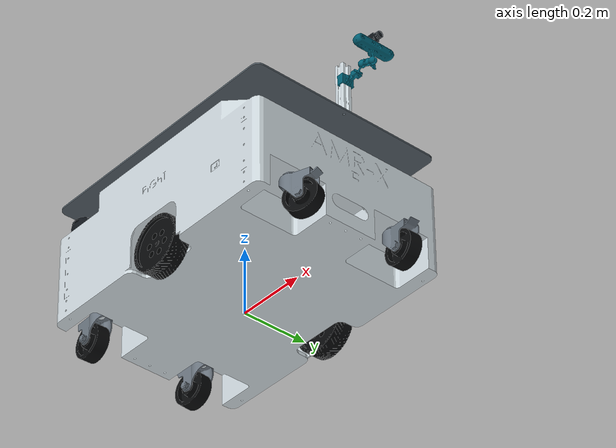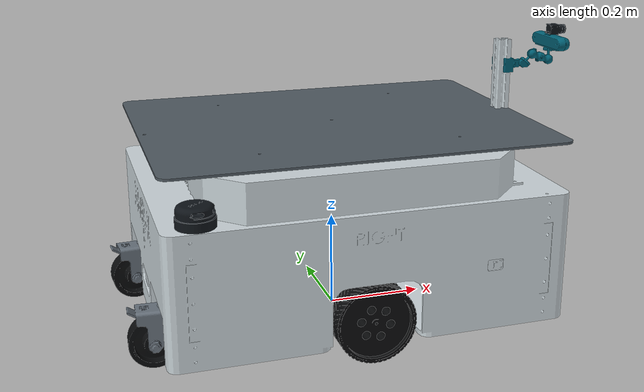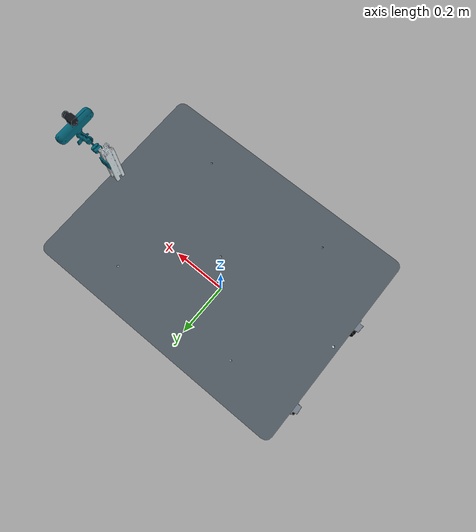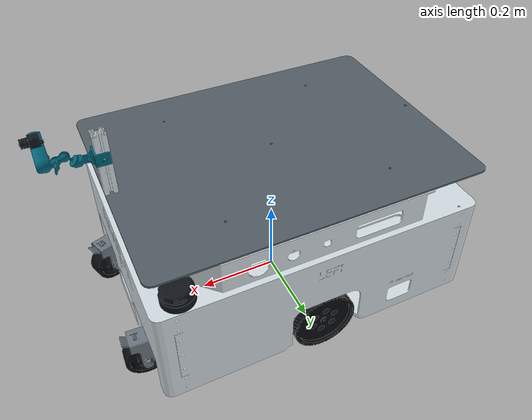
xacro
<?xml version="1.0"?>
<robot name="amr_x_2lidar" xmlns:xacro="http://www.ros.org/wiki/xacro">

  <xacro:property name="wheel_radius"     value="0.080"/>   <!-- VERIFY: not derivable from the CAD export -->
  <xacro:property name="wheel_separation" value="0.541"/>  <!-- from DL/DR joint origins (2 x 0.289353) -->
  <xacro:property name="base_to_axle_z"   value="0.3305"/>  <!-- NEW CAD: DL/DR joint z = -0.3305 (was 0.3505) -->

  <!-- IMU mount point on base_link -->
  <xacro:property name="imu_xyz" value="0 0 0.0"/>

  <xacro:property name="lidar1_topic" value="scan"/>
  <xacro:property name="lidar2_topic" value="scan_2"/>

  <!-- LiDAR sensor characteristics (shared by both units) -->
  <xacro:property name="lidar_min_range"    value="0.15"/>
  <xacro:property name="lidar_max_range"    value="12.0"/>
  <xacro:property name="lidar_samples"      value="360"/>
  <xacro:property name="lidar_update_rate"  value="10"/>

  <xacro:property name="camera_xyz"          value="0.0 -0.05 0.02"/>
  <xacro:property name="camera_rpy"          value="0 0 0"/>
  <xacro:property name="camera_topic"        value="camera/image_raw"/>
  <xacro:property name="camera_width"        value="640"/>
  <xacro:property name="camera_height"       value="480"/>
  <xacro:property name="camera_update_rate"  value="30"/>
  <xacro:property name="camera_horizontal_fov" value="1.089"/> <!-- ~62 deg -->

  <xacro:include filename="$(find robot_description)/urdf/AMR-2Lidar-Link.urdf"/>

  <link name="base_footprint"/>
  <joint name="base_footprint_joint" type="fixed">
    <parent link="base_footprint"/>
    <child  link="base_link"/>
    <origin xyz="0 0 ${base_to_axle_z + wheel_radius}" rpy="0 0 0"/>
  </joint>

  <link name="imu_link"/>
  <joint name="imu_joint" type="fixed">
    <parent link="base_link"/>
    <child  link="imu_link"/>
    <origin xyz="${imu_xyz}" rpy="0 0 0"/>
  </joint>

  <link name="camera_link">
    <inertial>
      <mass value="0.05"/>
      <origin xyz="0 0 0" rpy="0 0 0"/>
      <inertia ixx="1e-6" iyy="1e-6" izz="1e-6" ixy="0" ixz="0" iyz="0"/>
    </inertial>
  </link>
  <joint name="camera_joint" type="fixed">
    <parent link="cameras_mount_Link"/>
    <child  link="camera_link"/>
    <origin xyz="${camera_xyz}" rpy="${camera_rpy}"/>
  </joint>

  <link name="camera_optical_link">
    <inertial>
      <mass value="0.001"/>
      <origin xyz="0 0 0" rpy="0 0 0"/>
      <inertia ixx="1e-7" iyy="1e-7" izz="1e-7" ixy="0" ixz="0" iyz="0"/>
    </inertial>
  </link>
  <joint name="camera_optical_joint" type="fixed">
    <parent link="camera_link"/>
    <child  link="camera_optical_link"/>
    <origin xyz="0 0 0" rpy="-1.5708 0 -1.5708"/>
  </joint>

  <!-- ===================================================================
       4. Gazebo Harmonic system plugins
       =================================================================== -->
  <gazebo>
    <!-- Differential drive on the REAL wheels -->
    <plugin filename="gz-sim-diff-drive-system"
            name="gz::sim::systems::DiffDrive">
      <left_joint>DL_joint</left_joint>
      <right_joint>DR_joint</right_joint>
      <wheel_separation>${wheel_separation}</wheel_separation>
      <wheel_radius>${wheel_radius}</wheel_radius>
      <topic>cmd_vel</topic>
      <odom_topic>odom</odom_topic>
      <tf_topic>tf</tf_topic>
      <frame_id>odom</frame_id>
      <child_frame_id>base_footprint</child_frame_id>
      <odom_publish_frequency>50</odom_publish_frequency>
      <max_linear_velocity>1.2</max_linear_velocity>
      <min_linear_velocity>-1.2</min_linear_velocity>
      <max_angular_velocity>1.5</max_angular_velocity>
      <min_angular_velocity>-1.5</min_angular_velocity>
    </plugin>

    <plugin filename="gz-sim-joint-state-publisher-system"
            name="gz::sim::systems::JointStatePublisher">
      <topic>joint_states</topic>
    </plugin>

    <plugin filename="gz-sim-sensors-system"
            name="gz::sim::systems::Sensors">
      <render_engine>ogre2</render_engine>
    </plugin>
  </gazebo>

  <gazebo reference="Lidar1_link">
    <sensor name="lidar1" type="gpu_lidar">
      <topic>${lidar1_topic}</topic>
      <gz_frame_id>Lidar1_link</gz_frame_id>
      <update_rate>${lidar_update_rate}</update_rate>
      <always_on>true</always_on>
      <visualize>true</visualize>
      <lidar>
        <scan>
          <horizontal>
            <samples>${lidar_samples}</samples>
            <resolution>1</resolution>
            <min_angle>-3.14159</min_angle>
            <max_angle>3.14159</max_angle>
          </horizontal>
          <vertical>
            <samples>1</samples>
            <resolution>1</resolution>
            <min_angle>0</min_angle>
            <max_angle>0</max_angle>
          </vertical>
        </scan>
        <range>
          <min>${lidar_min_range}</min>
          <max>${lidar_max_range}</max>
          <resolution>0.01</resolution>
        </range>
      </lidar>
    </sensor>
  </gazebo>

  <gazebo reference="Lidar2_link">
    <sensor name="lidar2" type="gpu_lidar">
      <topic>${lidar2_topic}</topic>
      <gz_frame_id>Lidar2_link</gz_frame_id>
      <update_rate>${lidar_update_rate}</update_rate>
      <always_on>true</always_on>
      <visualize>true</visualize>
      <lidar>
        <scan>
          <horizontal>
            <samples>${lidar_samples}</samples>
            <resolution>1</resolution>
            <min_angle>-3.14159</min_angle>
            <max_angle>3.14159</max_angle>
          </horizontal>
          <vertical>
            <samples>1</samples>
            <resolution>1</resolution>
            <min_angle>0</min_angle>
            <max_angle>0</max_angle>
          </vertical>
        </scan>
        <range>
          <min>${lidar_min_range}</min>
          <max>${lidar_max_range}</max>
          <resolution>0.01</resolution>
        </range>
      </lidar>
    </sensor>
  </gazebo>

  <!-- ===================================================================
       6. IMU sensor
       =================================================================== -->
  <gazebo reference="imu_link">
    <sensor name="imu" type="imu">
      <topic>imu</topic>
      <gz_frame_id>imu_link</gz_frame_id>
      <update_rate>100</update_rate>
      <always_on>true</always_on>
    </sensor>
  </gazebo>

  <gazebo reference="camera_link">
    <sensor name="camera" type="camera">
      <topic>${camera_topic}</topic>
      <gz_frame_id>camera_optical_link</gz_frame_id>
      <update_rate>${camera_update_rate}</update_rate>
      <always_on>true</always_on>
      <visualize>true</visualize>
      <camera>
        <horizontal_fov>${camera_horizontal_fov}</horizontal_fov>
        <image>
          <width>${camera_width}</width>
          <height>${camera_height}</height>
          <format>R8G8B8</format>
        </image>
        <clip>
          <near>0.05</near>
          <far>30.0</far>
        </clip>
      </camera>
    </sensor>
  </gazebo>

  <gazebo reference="FR_Caster_Wheel_Link"><mu1>0.0</mu1><mu2>0.0</mu2></gazebo>
  <gazebo reference="FL_Caster_Wheel_Link"><mu1>0.0</mu1><mu2>0.0</mu2></gazebo>
  <gazebo reference="BR_Caster_Wheel_Link"><mu1>0.0</mu1><mu2>0.0</mu2></gazebo>
  <gazebo reference="BL_Caster_Wheel_Link"><mu1>0.0</mu1><mu2>0.0</mu2></gazebo>

  <!-- ==== INSPECTION MODULE (thermal camera + gas sensor) ==== -->
  <link name="cameras_mount_Link">
    <inertial>
      <origin xyz="-0.040236 0.013428 -0.026709" rpy="0 0 0"/>
      <mass value="0.14071"/>
      <inertia ixx="5.798E-05" ixy="3.3384E-07" ixz="-1.7319E-07"
               iyy="1.6986E-05" iyz="1.6883E-08" izz="5.5627E-05"/>
    </inertial>
    <visual>
      <origin xyz="0 0 0" rpy="0 0 0"/>
      <geometry><mesh filename="package://robot_description/meshes/cameras_mount_Link.STL"/></geometry>
      <material name="amrx_medical_teal"><color rgba="0 0.38 0.46 1"/></material>
    </visual>
    <collision>
      <origin xyz="0 0 0" rpy="0 0 0"/>
      <geometry><mesh filename="package://robot_description/meshes/cameras_mount_Link.STL"/></geometry>
    </collision>
  </link>
  <joint name="cameras_mount_joint" type="fixed">
    <origin xyz="0.51252 -0.0115 0.13975" rpy="0 0.020136 0"/>
    <parent link="base_link"/>
    <child link="cameras_mount_Link"/>
  </joint>

  <link name="camera_thermal_Link">
    <inertial>
      <origin xyz="-0.025189 4.4462E-06 -7.318E-05" rpy="0 0 0"/>
      <mass value="0.008096"/>
      <inertia ixx="6.1294E-07" ixy="7.4569E-11" ixz="-1.4303E-09"
               iyy="4.3511E-07" iyz="-4.9824E-11" izz="4.3599E-07"/>
    </inertial>
    <visual>
      <origin xyz="0 0 0" rpy="0 0 0"/>
      <geometry><mesh filename="package://robot_description/meshes/camera_thermal_Link.STL"/></geometry>
      <material name="amrx_sensor_graphite"><color rgba="0.06 0.08 0.10 1"/></material>
    </visual>
    <collision>
      <origin xyz="0 0 0" rpy="0 0 0"/>
      <geometry><mesh filename="package://robot_description/meshes/camera_thermal_Link.STL"/></geometry>
    </collision>
  </link>
  <joint name="camera_thermal_joint" type="fixed">
    <origin xyz="0.018405 0.0095726 0.02568" rpy="0 0 0"/>
    <parent link="cameras_mount_Link"/>
    <child link="camera_thermal_Link"/>
  </joint>

  <link name="GAZ_sensor_Link">
    <inertial>
      <origin xyz="0 0 0" rpy="0 0 0"/>
      <mass value="0.001"/>
      <inertia ixx="1e-6" ixy="0" ixz="0" iyy="1e-6" iyz="0" izz="1e-6"/>
    </inertial>
    <visual>
      <origin xyz="0 0 0" rpy="0 0 0"/>
      <geometry><mesh filename="package://robot_description/meshes/GAZ_sensor_Link.STL"/></geometry>
      <material name="amrx_porcelain_white"><color rgba="0.82 0.86 0.88 1"/></material>
    </visual>
    <collision>
      <origin xyz="0 0 0" rpy="0 0 0"/>
      <geometry><mesh filename="package://robot_description/meshes/GAZ_sensor_Link.STL"/></geometry>
    </collision>
  </link>
  <joint name="GAZ_sensor_Joint" type="fixed">
    <origin xyz="0.23945 -0.30074 -0.235" rpy="0 0 0"/>
    <parent link="base_link"/>
    <child link="GAZ_sensor_Link"/>
  </joint>

</robot>

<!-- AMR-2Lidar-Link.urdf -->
<robot
  name="AMR-2Lidar-Link">
  <!-- AMR-X visual finish palette:
       porcelain body panels, brushed-metal deck and caster forks,
       rubber-black wheels, and graphite sensor housings. -->
  <link
    name="base_link">
    <inertial>
      <origin
        xyz="0.00137619141427497 -0.000593406526369778 -0.212968361709277"
        rpy="0 0 0" />
      <mass
        value="22.1090437469277" />
      <inertia
        ixx="0.541221819095536"
        ixy="-0.00027729020661416"
        ixz="0.0002447950863611"
        iyy="0.973191945840648"
        iyz="-0.000168021251934657"
        izz="1.44385592854034" />
    </inertial>
    <visual name="body_finish">
      <origin
        xyz="0 0 0"
        rpy="0 0 0" />
      <geometry>
        <mesh
          filename="package://robot_description/meshes/base_body_visual.STL" />
      </geometry>
      <material
        name="amrx_porcelain_white">
        <color
          rgba="0.82 0.86 0.88 1" />
      </material>
    </visual>
    <visual name="deck_finish">
      <origin xyz="0 0 0" rpy="0 0 0" />
      <geometry>
        <mesh filename="package://robot_description/meshes/base_deck_visual.STL" />
      </geometry>
      <material name="amrx_brushed_silver">
        <color rgba="0.32 0.36 0.39 1" />
      </material>
    </visual>
    <collision>
      <origin
        xyz="0 0 0"
        rpy="0 0 0" />
      <geometry>
        <mesh
          filename="package://robot_description/meshes/base_link.STL" />
      </geometry>
    </collision>
  </link>
  <link
    name="FR_Body_Caster_Link">
    <inertial>
      <origin
        xyz="0.0205025619096376 0.00805999842043462 -0.0351455880816226"
        rpy="0 0 0" />
      <mass
        value="0.0712645570553844" />
      <inertia
        ixx="4.45319289719978E-05"
        ixy="-5.81773865014641E-07"
        ixz="2.69456770292489E-06"
        iyy="4.59939202869369E-05"
        iyz="9.41238272155232E-07"
        izz="5.35142156051028E-05" />
    </inertial>
    <visual>
      <origin
        xyz="0 0 0"
        rpy="0 0 0" />
      <geometry>
        <mesh
          filename="package://robot_description/meshes/FR_Body_Caster_Link.STL" />
      </geometry>
      <material
        name="amrx_brushed_aluminum">
        <color
          rgba="0.42 0.46 0.50 1" />
      </material>
    </visual>
    <collision>
      <origin
        xyz="0 0 0"
        rpy="0 0 0" />
      <geometry>
        <mesh
          filename="package://robot_description/meshes/FR_Body_Caster_Link.STL" />
      </geometry>
    </collision>
  </link>
  <joint
    name="FR_Body_Caster_joint"
    type="continuous">
    <origin
      xyz="0.374 -0.169999999999993 -0.282499999999998"
      rpy="0 0 0" />
    <parent
      link="base_link" />
    <child
      link="FR_Body_Caster_Link" />
    <axis
      xyz="0 0 -1" />
  </joint>
  <link
    name="FR_Caster_Wheel_Link">
    <inertial>
      <origin
        xyz="-3.33066907387547E-16 0.0222865339908844 -1.04083408558608E-16"
        rpy="0 0 0" />
      <mass
        value="0.177618721015329" />
      <inertia
        ixx="0.000148679235470586"
        ixy="4.74338450462408E-20"
        ixz="-3.58519663705533E-21"
        iyy="0.000257680237598666"
        iyz="-4.79457457726133E-20"
        izz="0.000148679235470586" />
    </inertial>
    <visual>
      <origin
        xyz="0 0 0"
        rpy="0 0 0" />
      <geometry>
        <mesh
          filename="package://robot_description/meshes/FR_Caster_Wheel_Link.STL" />
      </geometry>
      <material
        name="amrx_rubber_black">
        <color
          rgba="0.035 0.04 0.045 1" />
      </material>
    </visual>
    <collision>
      <origin
        xyz="0 0 0"
        rpy="0 0 0" />
      <geometry>
        <mesh
          filename="package://robot_description/meshes/FR_Caster_Wheel_Link.STL" />
      </geometry>
    </collision>
  </link>
  <joint
    name="FR_Caster_Wheel_joint"
    type="continuous">
    <origin
      xyz="0.0386920896195706 -0.00978837069543212 -0.078"
      rpy="0 0 0.336050555012841" />
    <parent
      link="FR_Body_Caster_Link" />
    <child
      link="FR_Caster_Wheel_Link" />
    <axis
      xyz="0 1 0" />
  </joint>
  <link
    name="FL_Body_Caster_Link">
    <inertial>
      <origin
        xyz="0.022028733333041 -0.000223339093545327 -0.0351454984672232"
        rpy="0 0 0" />
      <mass
        value="0.0712645578720288" />
      <inertia
        ixx="4.43330543774277E-05"
        ixy="9.06699137804065E-08"
        ixz="2.85079275825134E-06"
        iyy="4.61926668209074E-05"
        iyz="-1.38798124870845E-07"
        izz="5.3514227745675E-05" />
    </inertial>
    <visual>
      <origin
        xyz="0 0 0"
        rpy="0 0 0" />
      <geometry>
        <mesh
          filename="package://robot_description/meshes/FL_Body_Caster_Link.STL" />
      </geometry>
      <material
        name="amrx_brushed_aluminum">
        <color
          rgba="0.42 0.46 0.50 1" />
      </material>
    </visual>
    <collision>
      <origin
        xyz="0 0 0"
        rpy="0 0 0" />
      <geometry>
        <mesh
          filename="package://robot_description/meshes/FL_Body_Caster_Link.STL" />
      </geometry>
    </collision>
  </link>
  <joint
    name="FL_Body_Caster_joint"
    type="continuous">
    <origin
      xyz="0.374 0.170000000000006 -0.282499999999998"
      rpy="0 0 0" />
    <parent
      link="base_link" />
    <child
      link="FL_Body_Caster_Link" />
    <axis
      xyz="0 0 -1" />
  </joint>
  <link
    name="FL_Caster_Wheel_Link">
    <inertial>
      <origin
        xyz="-2.22044604925031E-16 -0.0217134660091165 -1.73472347597681E-17"
        rpy="0 0 0" />
      <mass
        value="0.177618721015329" />
      <inertia
        ixx="0.000148679235470585"
        ixy="1.99052742604761E-20"
        ixz="-6.0340766739589E-21"
        iyy="0.000257680237598665"
        iyz="-1.78933177108343E-21"
        izz="0.000148679235470585" />
    </inertial>
    <visual>
      <origin
        xyz="0 0 0"
        rpy="0 0 0" />
      <geometry>
        <mesh
          filename="package://robot_description/meshes/FL_Caster_Wheel_Link.STL" />
      </geometry>
      <material
        name="amrx_rubber_black">
        <color
          rgba="0.035 0.04 0.045 1" />
      </material>
    </visual>
    <collision>
      <origin
        xyz="0 0 0"
        rpy="0 0 0" />
      <geometry>
        <mesh
          filename="package://robot_description/meshes/FL_Caster_Wheel_Link.STL" />
      </geometry>
    </collision>
  </link>
  <joint
    name="FL_Caster_Wheel_joint"
    type="continuous">
    <origin
      xyz="0.0343304904762524 0.0203545430717568 -0.0780000000000001"
      rpy="0 0 -0.0486506116887168" />
    <parent
      link="FL_Body_Caster_Link" />
    <child
      link="FL_Caster_Wheel_Link" />
    <axis
      xyz="0 -1 0" />
  </joint>
  <link
    name="BR_Body_Caster_Link">
    <inertial>
      <origin
        xyz="-0.0220288643050933 0.000210006907644611 -0.0351454982768476"
        rpy="0 0 0" />
      <mass
        value="0.071264557847176" />
      <inertia
        ixx="4.43329452168321E-05"
        ixy="8.95443561334674E-08"
        ixz="-2.85087607349676E-06"
        iyy="4.61927755459435E-05"
        iyz="1.37072608516211E-07"
        izz="5.35142277781452E-05" />
    </inertial>
    <visual>
      <origin
        xyz="0 0 0"
        rpy="0 0 0" />
      <geometry>
        <mesh
          filename="package://robot_description/meshes/BR_Body_Caster_Link.STL" />
      </geometry>
      <material
        name="amrx_brushed_aluminum">
        <color
          rgba="0.42 0.46 0.50 1" />
      </material>
    </visual>
    <collision>
      <origin
        xyz="0 0 0"
        rpy="0 0 0" />
      <geometry>
        <mesh
          filename="package://robot_description/meshes/BR_Body_Caster_Link.STL" />
      </geometry>
    </collision>
  </link>
  <joint
    name="BR_Body_Caster_joint"
    type="continuous">
    <origin
      xyz="-0.373999999999999 -0.169999999999993 -0.282499999999998"
      rpy="0 0 0" />
    <parent
      link="base_link" />
    <child
      link="BR_Body_Caster_Link" />
    <axis
      xyz="0 0 -1" />
  </joint>
  <link
    name="BR_Caster_Wheel_Link">
    <inertial>
      <origin
        xyz="1.89084858881472E-16 0.0217134660091165 -2.25514051876985E-17"
        rpy="0 0 0" />
      <mass
        value="0.177618721015328" />
      <inertia
        ixx="0.000148679235470585"
        ixy="-6.60685698858354E-20"
        ixz="2.96982884968449E-20"
        iyy="0.000257680237598665"
        iyz="3.42889021891861E-20"
        izz="0.000148679235470585" />
    </inertial>
    <visual>
      <origin
        xyz="0 0 0"
        rpy="0 0 0" />
      <geometry>
        <mesh
          filename="package://robot_description/meshes/BR_Caster_Wheel_Link.STL" />
      </geometry>
      <material
        name="amrx_rubber_black">
        <color
          rgba="0.035 0.04 0.045 1" />
      </material>
    </visual>
    <collision>
      <origin
        xyz="0 0 0"
        rpy="0 0 0" />
      <geometry>
        <mesh
          filename="package://robot_description/meshes/BR_Caster_Wheel_Link.STL" />
      </geometry>
    </collision>
  </link>
  <joint
    name="BR_Caster_Wheel_joint"
    type="continuous">
    <origin
      xyz="-0.0343181653536056 -0.0203753166052122 -0.0780000000000002"
      rpy="0 0 -0.0480453985910889" />
    <parent
      link="BR_Body_Caster_Link" />
    <child
      link="BR_Caster_Wheel_Link" />
    <axis
      xyz="0 1 0" />
  </joint>
  <link
    name="BL_Body_Caster_Link">
    <inertial>
      <origin
        xyz="-0.0218678430005275 -0.00266697882029623 -0.0351455045702214"
        rpy="0 0 0" />
      <mass
        value="0.0712645529054218" />
      <inertia
        ixx="4.43414537888446E-05"
        ixy="-1.54182596802165E-07"
        ixz="-2.8443723651872E-06"
        iyy="4.61842448469417E-05"
        iyz="-2.36228974681823E-07"
        izz="5.3514226990257E-05" />
    </inertial>
    <visual>
      <origin
        xyz="0 0 0"
        rpy="0 0 0" />
      <geometry>
        <mesh
          filename="package://robot_description/meshes/BL_Body_Caster_Link.STL" />
      </geometry>
      <material
        name="amrx_brushed_aluminum">
        <color
          rgba="0.42 0.46 0.50 1" />
      </material>
    </visual>
    <collision>
      <origin
        xyz="0 0 0"
        rpy="0 0 0" />
      <geometry>
        <mesh
          filename="package://robot_description/meshes/BL_Body_Caster_Link.STL" />
      </geometry>
    </collision>
  </link>
  <joint
    name="BL_Body_Caster_joint"
    type="continuous">
    <origin
      xyz="-0.373999999999999 0.170000000000006 -0.282499999999998"
      rpy="0 0 0" />
    <parent
      link="base_link" />
    <child
      link="BL_Body_Caster_Link" />
    <axis
      xyz="0 0 -1" />
  </joint>
  <link
    name="BL_Caster_Wheel_Link">
    <inertial>
      <origin
        xyz="3.77302356024956E-16 -0.0222865339908825 7.80625564189563E-17"
        rpy="0 0 0" />
      <mass
        value="0.177618721015329" />
      <inertia
        ixx="0.000148679235470586"
        ixy="-4.15046144154607E-20"
        ixz="1.76376685974184E-20"
        iyy="0.000257680237598666"
        iyz="6.12826109423716E-21"
        izz="0.000148679235470585" />
    </inertial>
    <visual>
      <origin
        xyz="0 0 0"
        rpy="0 0 0" />
      <geometry>
        <mesh
          filename="package://robot_description/meshes/BL_Caster_Wheel_Link.STL" />
      </geometry>
      <material
        name="amrx_rubber_black">
        <color
          rgba="0.035 0.04 0.045 1" />
      </material>
    </visual>
    <collision>
      <origin
        xyz="0 0 0"
        rpy="0 0 0" />
      <geometry>
        <mesh
          filename="package://robot_description/meshes/BL_Caster_Wheel_Link.STL" />
      </geometry>
    </collision>
  </link>
  <joint
    name="BL_Caster_Wheel_joint"
    type="continuous">
    <origin
      xyz="-0.0350063315403583 0.0191689006488776 -0.0780000000000001"
      rpy="0 0 0.0828467818465256" />
    <parent
      link="BL_Body_Caster_Link" />
    <child
      link="BL_Caster_Wheel_Link" />
    <axis
      xyz="0 -1 0" />
  </joint>
  <link
    name="DR_Link">
    <inertial>
      <origin
        xyz="-1.58519700310666E-07 0.0188945749350604 -1.83852059257306E-07"
        rpy="0 0 0" />
      <mass
        value="0.694359970313603" />
      <inertia
        ixx="0.00133736761007223"
        ixy="4.06292710783297E-09"
        ixz="7.66114678507709E-10"
        iyy="0.00249169026727874"
        iyz="4.70958429396628E-09"
        izz="0.00133736783768793" />
    </inertial>
    <visual>
      <origin
        xyz="0 0 0"
        rpy="0 0 0" />
      <geometry>
        <mesh
          filename="package://robot_description/meshes/DR_Link.STL" />
      </geometry>
      <material
        name="amrx_rubber_black">
        <color
          rgba="0.035 0.04 0.045 1" />
      </material>
    </visual>
    <collision>
      <origin
        xyz="0 0 0"
        rpy="0 0 0" />
      <geometry>
        <mesh
          filename="package://robot_description/meshes/DR_Link.STL" />
      </geometry>
    </collision>
  </link>
  <joint
    name="DR_joint"
    type="continuous">
    <origin
      xyz="0 -0.289353419879756 -0.3305"
      rpy="0 0 0" />
    <parent
      link="base_link" />
    <child
      link="DR_Link" />
    <axis
      xyz="0 1 0" />
  </joint>
  <link
    name="DL_Link">
    <inertial>
      <origin
        xyz="-2.26846661843805E-07 -0.0188945749350604 8.64330206226671E-08"
        rpy="0 0 0" />
      <mass
        value="0.694359970313607" />
      <inertia
        ixx="0.00133736830215005"
        ixy="-5.81293010220078E-09"
        ixz="-5.152550629065E-10"
        iyy="0.00249169026727875"
        iyz="2.21300802855064E-09"
        izz="0.00133736714561013" />
    </inertial>
    <visual>
      <origin
        xyz="0 0 0"
        rpy="0 0 0" />
      <geometry>
        <mesh
          filename="package://robot_description/meshes/DL_Link.STL" />
      </geometry>
      <material
        name="amrx_rubber_black">
        <color
          rgba="0.035 0.04 0.045 1" />
      </material>
    </visual>
    <collision>
      <origin
        xyz="0 0 0"
        rpy="0 0 0" />
      <geometry>
        <mesh
          filename="package://robot_description/meshes/DL_Link.STL" />
      </geometry>
    </collision>
  </link>
  <joint
    name="DL_joint"
    type="continuous">
    <origin
      xyz="0 0.289353419879769 -0.3305"
      rpy="0 0 0" />
    <parent
      link="base_link" />
    <child
      link="DL_Link" />
    <axis
      xyz="0 1 0" />
  </joint>
  <link
    name="Lidar2_link">
    <inertial>
      <origin
        xyz="-0.000543004548526974 0.000841347150216609 -0.0222148342427571"
        rpy="0 0 0" />
      <mass
        value="0.163065240034906" />
      <inertia
        ixx="6.05699412893629E-05"
        ixy="-1.81258488113246E-07"
        ixz="-1.5594629675117E-07"
        iyy="6.0593687932255E-05"
        iyz="1.84120634628883E-07"
        izz="0.000107588752528074" />
    </inertial>
    <visual>
      <origin
        xyz="0 0 0"
        rpy="0 0 0" />
      <geometry>
        <mesh
          filename="package://robot_description/meshes/Lidar2_link.STL" />
      </geometry>
      <material
        name="amrx_sensor_graphite">
        <color
          rgba="0.06 0.08 0.10 1" />
      </material>
    </visual>
    <collision>
      <origin
        xyz="0 0 0"
        rpy="0 0 0" />
      <geometry>
        <mesh
          filename="package://robot_description/meshes/Lidar2_link.STL" />
      </geometry>
    </collision>
  </link>
  <joint
    name="Lidar2_joint"
    type="fixed">
    <origin
      xyz="-0.33245 -0.26043 -0.0637"
      rpy="0 0 0" />
    <parent
      link="base_link" />
    <child
      link="Lidar2_link" />
    <axis
      xyz="0 0 0" />
  </joint>
  <link
    name="Lidar1_link">
    <inertial>
      <origin
        xyz="0.663648255221156 0.518801307440716 -0.0222148342073081"
        rpy="0 0 0" />
      <mass
        value="0.163065240500782" />
      <inertia
        ixx="6.05766350494223E-05"
        ixy="1.81573163514374E-07"
        ixz="-1.76596355157286E-07"
        iyy="6.05869944506688E-05"
        iyz="-1.64418298512892E-07"
        izz="0.000107588752845482" />
    </inertial>
    <visual>
      <origin
        xyz="-0.664362 -0.519457 0"
        rpy="0 0 0" />
      <geometry>
        <mesh
          filename="package://robot_description/meshes/Lidar1_link.STL" />
      </geometry>
      <material
        name="amrx_sensor_graphite">
        <color
          rgba="0.06 0.08 0.10 1" />
      </material>
    </visual>
    <collision>
      <origin
        xyz="-0.664362 -0.519457 0"
        rpy="0 0 0" />
      <geometry>
        <mesh
          filename="package://robot_description/meshes/Lidar1_link.STL" />
      </geometry>
    </collision>
  </link>
  <joint
    name="Lidar1_joint"
    type="fixed">
    <origin
      xyz="0.33245 0.26043 -0.0637"
      rpy="0 0 0" />
    <parent
      link="base_link" />
    <child
      link="Lidar1_link" />
    <axis
      xyz="0 0 0" />
  </joint>
</robot>
